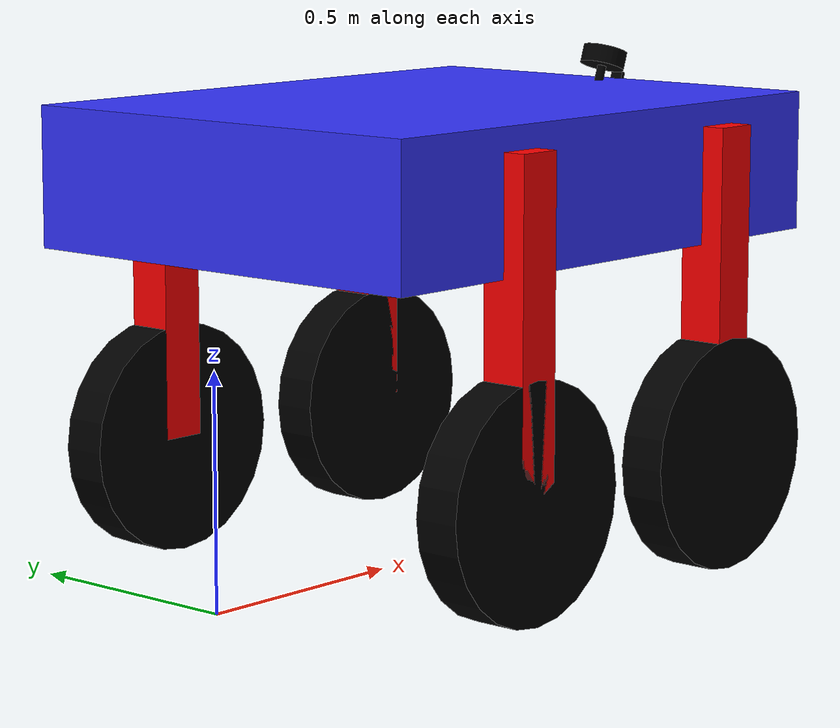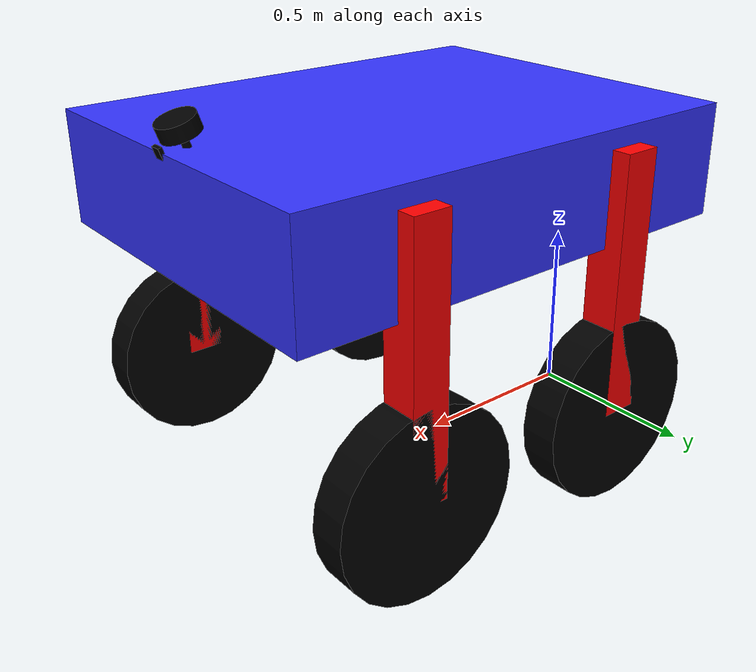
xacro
<?xml version="1.0"?>
<robot xmlns:xacro="http://www.ros.org/wiki/xacro"  name="robot">

    <xacro:include filename="robot_core_control.xacro" />
    <xacro:include filename="lidar.xacro" />
    <xacro:include filename="camera.xacro" />
    <xacro:include filename="imu.xacro" />
    <xacro:include filename="gps.xacro" />
    <xacro:include filename="ros2_control.xacro" />

</robot>

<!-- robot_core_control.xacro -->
<robot xmlns:xacro="http://www.ros.org/wiki/xacro">

     <xacro:include filename="inertial_macros.xacro" />

    <xacro:property name="chassis_length" value="1.3"/>
    <xacro:property name="chassis_width" value="1.0"/>
    <xacro:property name="chassis_height" value="0.3"/>
    <xacro:property name="chassis_mass" value="3.0"/>

    <xacro:property name="leg_length" value="0.1"/>
    <xacro:property name="leg_width" value="0.1"/>
    <xacro:property name="leg_height" value="0.7"/>
    <xacro:property name="leg_mass" value="0.5"/>

    <xacro:property name="leg_offset_x" value="1.0"/>
    <xacro:property name="leg_offset_y" value="0.5"/>
    <xacro:property name="leg_offset_z" value="0.1"/>

    <xacro:property name="wheel_radius" value="0.25"/>
    <xacro:property name="wheel_thickness" value="0.1"/>
    <xacro:property name="wheel_mass" value="0.5"/>

    <xacro:property name="wheel_offset_x" value="1.0"/>
    <xacro:property name="wheel_offset_y" value="0.5"/>
    <xacro:property name="wheel_offset_z" value="0.01"/>

    <xacro:property name="caster_wheel_offset_x" value="0.350"/>
    <xacro:property name="caster_wheel_offset_z" value="${wheel_offset_z - wheel_radius + caster_wheel_radius}"/>

    <material name="white">
        <color rgba="1 1 1 1" />
    </material>

    <material name="orange">
        <color rgba="1 0.3 0.1 1"/>
    </material>

    <material name="blue">
        <color rgba="0.2 0.2 1 1"/>
    </material>

    <material name="black">
        <color rgba="0 0 0 1"/>
    </material>

    <material name="red">
        <color rgba="1 0 0 1"/>
    </material>

    <!-- BASE_FOOTPRINT LINK -->

    <link name="base_footprint"/>

   <!-- BASE LINK -->

    <joint name="base_joint" type="fixed">
        <parent link="base_footprint"/>
        <child link="base_link"/>
        <origin xyz="0 0 0.7"/>
    </joint>

    <link name="base_link">
        <visual>
            <origin xyz="${chassis_length/2} 0 ${chassis_height/2}"/>
            <geometry>
                <box size="${chassis_length} ${chassis_width} ${chassis_height}"/>
            </geometry>
            <material name="blue"/>
        </visual>
        <collision>
            <origin xyz="${chassis_length/2} 0 ${chassis_height/2}"/>
            <geometry>
                <box size="${chassis_length} ${chassis_width} ${chassis_height}"/>
            </geometry>
        </collision>
        <xacro:inertial_box mass="0.5" x="${chassis_length}" y="${chassis_width}" z="${chassis_height}">
            <origin xyz="${chassis_length/2} 0 ${chassis_height/2}" rpy="0 0 0"/>
        </xacro:inertial_box>
    </link>

    <!-- LEFT WHEEL LINK -->

    <joint name="left_wheel_joint" type="continuous">
        <parent link="left_leg_link"/>
        <child link="left_wheel"/>
        <origin xyz="0 0 -0.35" rpy="-${pi/2} 0 0" />
        <axis xyz="0 0 1"/>
        <disable_collision>1</disable_collision>

    </joint>

    <joint name="left_wheel_leg_joint" type="revolute">
        <parent link="base_link"/>
        <child link="left_leg_link"/>
        <origin xyz="${leg_offset_x} ${leg_offset_y} ${-leg_offset_z}" rpy="0 0 0"/>
        <axis xyz="0 0 1"/>
        <limit lower="-0.7854" upper="0.7854" effort="10" velocity="0.5"/>

    </joint>

    <!-- Left leg link -->
    <link name="left_leg_link">
        <visual>
            <geometry>
                <box size="${leg_length} ${leg_width} ${leg_height}"/>
            </geometry>
            <material name="red"/>
        </visual>
        <collision>
            <geometry>
                <box size="${leg_length} ${leg_width} ${leg_height}"/>
            </geometry>
        </collision>
        <xacro:inertial_box mass="0.2" x="${leg_length}" y="${leg_width}" z="${leg_height}">
            <origin xyz="${leg_length/2} 0 ${leg_height/2}" rpy="0 0 0"/>
        </xacro:inertial_box>
    </link>

    <link name="left_wheel">
        <visual>
            <geometry>
                <cylinder radius="${wheel_radius}" length="${wheel_thickness}"/>
            </geometry>
            <material name="black"/>
        </visual>
        <collision>
            <geometry>
                <sphere radius="${wheel_radius}"/>
            </geometry>
        </collision>
        <xacro:inertial_cylinder mass="${wheel_mass}" length="${wheel_thickness}" radius="${wheel_radius}">
            <origin xyz="0 0 0" rpy="0 0 0"/>
        </xacro:inertial_cylinder>
    </link>

    <!-- RIGHT WHEEL LINK -->

    <joint name="right_wheel_joint" type="continuous">
        <parent link="right_leg_link"/>
        <child link="right_wheel"/>
        <origin xyz="0 0 -0.35" rpy="-${pi/2} 0 0" />
        <axis xyz="0 0 1"/>
        <disable_collision>0</disable_collision>
    </joint>

    <joint name="right_wheel_leg_joint" type="revolute">
        <parent link="base_link"/>
        <child link="right_leg_link"/>
        <origin xyz="${leg_offset_x} ${-leg_offset_y} ${-leg_offset_z}" rpy="0 0 0"/>
        <axis xyz="0 0 1"/>
        <limit lower="-0.7854" upper="0.7854" effort="10" velocity="0.5"/>

    </joint>

    <!-- Right leg link -->
    <link name="right_leg_link">
         <visual>
            <geometry>
                <box size="${leg_length} ${leg_width} ${leg_height}"/>
            </geometry>
            <material name="red"/>
        </visual>
        <collision>
            <geometry>
                <box size="${leg_length} ${leg_width} ${leg_height}"/>
            </geometry>
        </collision>
        <xacro:inertial_box mass="0.2" x="${leg_length}" y="${leg_width}" z="${leg_height}">
            <origin xyz="${leg_length/2} 0 ${leg_height/2}" rpy="0 0 0"/>
        </xacro:inertial_box>
    </link>

    <link name="right_wheel">
        <visual>
            <geometry>
                <cylinder radius="${wheel_radius}" length="${wheel_thickness}"/>
            </geometry>
            <material name="black"/>
        </visual>
        <collision>
            <geometry>
                <sphere radius="${wheel_radius}"/>
            </geometry>
        </collision>
        <xacro:inertial_cylinder mass="${wheel_mass}" length="${wheel_thickness}" radius="${wheel_radius}">
            <origin xyz="0 0 0" rpy="0 0 0"/>
        </xacro:inertial_cylinder>
    </link>

     <!-- wheel back right-->

<joint name="wheel_back_right_joint" type="continuous">

    <parent link="right_back_leg_link"/>
    <child link="wheel_back_right"/>
      <origin xyz="0 0 -0.35" rpy="-${pi/2} 0 0" />
    <axis xyz="0 0 1"/>
    <disable_collision>0</disable_collision>

</joint>

<joint name="right_wheel_back_leg_joint" type="revolute">
        <parent link="base_link"/>
        <child link="right_back_leg_link"/>
        <origin xyz="${caster_wheel_offset_x} ${-wheel_offset_y} ${-leg_offset_z}" rpy="0.0 0.0 0.0"/>
        <axis xyz="0 0 1"/>
        <limit lower="-0.7854" upper="0.7854" effort="10" velocity="0.5"/>

    </joint>

    <!-- Right back leg link -->
    <link name="right_back_leg_link">
         <visual>
            <geometry>
                <box size="${leg_length} ${leg_width} ${leg_height}"/>
            </geometry>
            <material name="red"/>
        </visual>
        <collision>
            <geometry>
                <box size="${leg_length} ${leg_width} ${leg_height}"/>
            </geometry>
        </collision>
        <xacro:inertial_box mass="0.2" x="${leg_length}" y="${leg_width}" z="${leg_height}">
            <origin xyz="${leg_length/2} 0 ${leg_height/2}" rpy="0 0 0"/>
        </xacro:inertial_box>
    </link>

<link name="wheel_back_right">
    <visual>
            <geometry>
                <cylinder radius="${wheel_radius}" length="${wheel_thickness}"/>
            </geometry>
            <material name="black"/>
        </visual>
        <collision>
            <geometry>
                <sphere radius="${wheel_radius}"/>
            </geometry>
        </collision>
        <xacro:inertial_cylinder mass="${wheel_mass}" length="${wheel_thickness}" radius="${wheel_radius}">
            <origin xyz="0 0 0" rpy="0 0 0"/>
        </xacro:inertial_cylinder>
</link>

<!-- wheel back left-->
<joint name="wheel_back_left_joint" type="continuous">

    <parent link="left_back_leg_link"/>
    <child link="wheel_back_left"/>
      <origin xyz="0 0 -0.35" rpy="-${pi/2} 0 0" />
    <axis xyz="0 0 1"/>
    <disable_collision>0</disable_collision>

</joint>

<joint name="left_wheel_back_leg_joint" type="revolute">
        <parent link="base_link"/>
        <child link="left_back_leg_link"/>
        <origin xyz="${caster_wheel_offset_x} ${wheel_offset_y} ${-leg_offset_z}" rpy="0.0 0.0 0.0"/>
        <axis xyz="0 0 1"/>
        <limit lower="-0.7854" upper="0.7854" effort="10" velocity="0.5"/>

    </joint>

    <!-- left back leg link -->
    <link name="left_back_leg_link">
         <visual>
            <geometry>
                <box size="${leg_length} ${leg_width} ${leg_height}"/>
            </geometry>
            <material name="red"/>
        </visual>
        <collision>
            <geometry>
                <box size="${leg_length} ${leg_width} ${leg_height}"/>
            </geometry>
        </collision>
        <xacro:inertial_box mass="0.2" x="${leg_length}" y="${leg_width}" z="${leg_height}">
            <origin xyz="${leg_length/2} 0 ${leg_height/2}" rpy="0 0 0"/>
        </xacro:inertial_box>
    </link>

<link name="wheel_back_left">
    <visual>
            <geometry>
                <cylinder radius="${wheel_radius}" length="${wheel_thickness}"/>
            </geometry>
            <material name="black"/>
        </visual>
        <collision>
            <geometry>
                <sphere radius="${wheel_radius}"/>
            </geometry>
        </collision>
        <xacro:inertial_cylinder mass="${wheel_mass}" length="${wheel_thickness}" radius="${wheel_radius}">
            <origin xyz="0 0 0" rpy="0 0 0"/>
        </xacro:inertial_cylinder>
</link>

</robot>

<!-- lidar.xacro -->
<robot xmlns:xacro="http://www.ros.org/wiki/xacro" >

    <joint name="laser_joint" type="fixed">
        <parent link="base_link"/>
        <child link="laser_frame"/>
        <origin xyz="1.25 0 0.35" rpy="0 0.33 0"/>
    </joint>

    <link name="laser_frame">
        <visual>
            <geometry>
                <cylinder radius="0.05" length="0.04"/>
            </geometry>
            <material name="black"/>
        </visual>
        <visual>
            <origin xyz="0 0 -0.05"/>
            <geometry>
                <cylinder radius="0.01" length="0.1"/>
            </geometry>
            <material name="black"/>
        </visual>
        <collision>
            <geometry>
                <cylinder radius="0.05" length="0.04"/>
            </geometry>
        </collision>
        <xacro:inertial_cylinder mass="0.1" length="0.04" radius="0.05">
            <origin xyz="0 0 0" rpy="0 0 0"/>
        </xacro:inertial_cylinder>
    </link>

    <gazebo reference="laser_frame">
        <material>Gazebo/Black</material>

        <sensor name="laser" type="ray">
            <pose> 0 0 0 0 0 0 </pose>
            <visualize>true</visualize>
            <update_rate>10</update_rate>
            <ray>
                <scan>
                    <horizontal>
                        <samples>360</samples>
                        <min_angle>-1.17</min_angle>
                        <max_angle>1.17</max_angle>
                    </horizontal>
                </scan>
                <range>
                    <min>0.3</min>
                    <max>3</max>
                </range>
            </ray>
            <plugin name="laser_controller" filename="libgazebo_ros_ray_sensor.so">
                <ros>
                    <argument>~/out:=scan</argument>
                </ros>
                <output_type>sensor_msgs/LaserScan</output_type>
                <frame_name>laser_frame</frame_name>
            </plugin>
        </sensor>
    </gazebo>

</robot>

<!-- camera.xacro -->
<robot xmlns:xacro="http://www.ros.org/wiki/xacro" >

    <joint name="camera_joint" type="fixed">
        <parent link="base_link"/>
        <child link="camera_link"/>
        <origin xyz="1.3 0.0 0.3" rpy="0.0 0.33 0"/>
    </joint>

    <link name="camera_link">
        <visual>
            <geometry>
                <box size="0.010 0.03 0.03"/>
            </geometry>
            <material name="black"/>
        </visual>
        <visual>
            <origin xyz="0 0 -0.05"/>
            <geometry>
                <cylinder radius="0.002" length="0.1"/>
            </geometry>
            <material name="black"/>
        </visual>
    </link>

    <joint name="camera_optical_joint" type="fixed">
        <parent link="camera_link"/>
        <child link="camera_link_optical"/>
        <origin xyz="0 0 0" rpy="${-pi/2} 0 ${-pi/2}"/>
    </joint>

    <link name="camera_link_optical"></link>

    <gazebo reference="camera_link">
        <material>Gazebo/Black</material>

        <sensor name="camera" type="camera">
            <pose> 0 0 0 0 0 0 </pose>
            <visualize>true</visualize>
            <update_rate>10</update_rate>
            <camera>
                <horizontal_fov>1.089</horizontal_fov>
                <image>
                    <format>R8G8B8</format>
                    <width>640</width>
                    <height>480</height>
                </image>
                <clip>
                    <near>0.05</near>
                    <far>8.0</far>
                </clip>
            </camera>
            <plugin name="camera_controller" filename="libgazebo_ros_camera.so">
                <frame_name>camera_link_optical</frame_name>
            </plugin>
        </sensor>
    </gazebo>

</robot>

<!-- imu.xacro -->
<robot xmlns:xacro="http://www.ros.org/wiki/xacro" >

<joint name="imu_joint" type="fixed">
    <parent link="base_link"/>
    <child link="imu_link"/>
    <origin xyz="0.1 0 0.112" rpy="0 0 0"/>
  </joint>

 <link name="imu_link">
  <visual>
    <geometry>
      <box size="0.05 0.05 0.05"/>
    </geometry>
  </visual>

  <collision>
    <geometry>
      <box size="0.05 0.05 0.05"/>
    </geometry>
  </collision>

  <inertial>
            <mass value="0.1" />
            <inertia ixx="0.01" ixy="0.0" ixz="0"
            iyy="0.01" iyz="0" izz="0.01" />
    </inertial>

  <!--xacro:box_inertia m="0.1" w="0.1" d="0.1" h="0.1"/-->
</link>

  <gazebo reference="imu_link">
        <material>Gazebo/Black</material>

        <sensor name="tb3_imu" type="imu">
          <always_on>true</always_on>
          <update_rate>200</update_rate>
          <imu>
            <angular_velocity>
              <x>
                <noise type="gaussian">
                  <mean>0.0</mean>
                  <stddev>2e-4</stddev>
                </noise>
              </x>
              <y>
                <noise type="gaussian">
                  <mean>0.0</mean>
                  <stddev>2e-4</stddev>
                </noise>
              </y>
              <z>
                <noise type="gaussian">
                  <mean>0.0</mean>
                  <stddev>2e-4</stddev>
                </noise>
              </z>
            </angular_velocity>
            <linear_acceleration>
              <x>
                <noise type="gaussian">
                  <mean>0.0</mean>
                  <stddev>1.7e-2</stddev>
                </noise>
              </x>
              <y>
                <noise type="gaussian">
                  <mean>0.0</mean>
                  <stddev>1.7e-2</stddev>
                </noise>
              </y>
              <z>
                <noise type="gaussian">
                  <mean>0.0</mean>
                  <stddev>1.7e-2</stddev>
                </noise>
              </z>
            </linear_acceleration>
          </imu>
          <plugin name="turtlebot3_imu" filename="libgazebo_ros_imu_sensor.so">
            <initial_orientation_as_reference>false</initial_orientation_as_reference>
            <ros>
              <remapping>~/out:=imu</remapping>
              </ros>
          </plugin>
        </sensor>
    </gazebo>

  </robot>

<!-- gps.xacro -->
<robot xmlns:xacro="http://www.ros.org/wiki/xacro" >

<!-- Add the gps link so we get a static transform for the GPS -->
  <joint name="gps_joint" type="fixed">
    <parent link="base_link"/>
    <child link="gps_link"/>
    <origin xyz="0.12 0 0.112" rpy="0 0 0"/>
  </joint>

  <link name="gps_link"/>

<gazebo reference="gps_link">
    <sensor name="gps_sensor" type="gps">
            <always_on>true</always_on>
            <update_rate>1.0</update_rate>
            <pose>0 0 0 0 0 0</pose>
            <gps>
                <position_sensing>
                <horizontal>
                    <noise type="gaussian">
                    <mean>0.0</mean>
                    <stddev>0.01</stddev>
                    </noise>
                </horizontal>
                <vertical>
                    <noise type="gaussian">
                    <mean>0.0</mean>
                    <stddev>0.01</stddev>
                    </noise>
                </vertical>
                </position_sensing>
            </gps>
            <plugin name="gps_controller" filename="libgazebo_ros_gps_sensor.so">
                <ros>
                <remapping>~/out:=/gps/fix</remapping>
                </ros>
            </plugin>
            </sensor>
    </gazebo>

  </robot>
